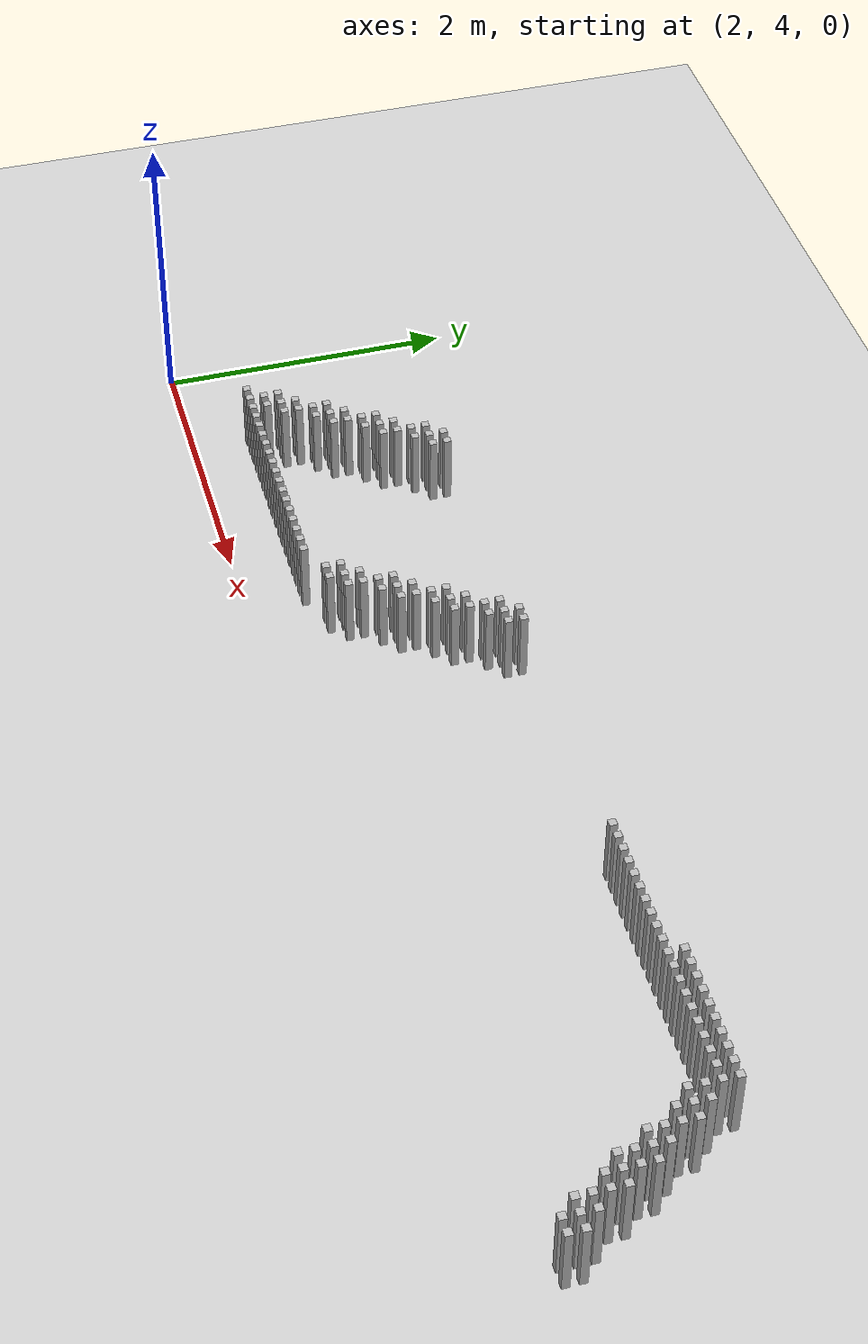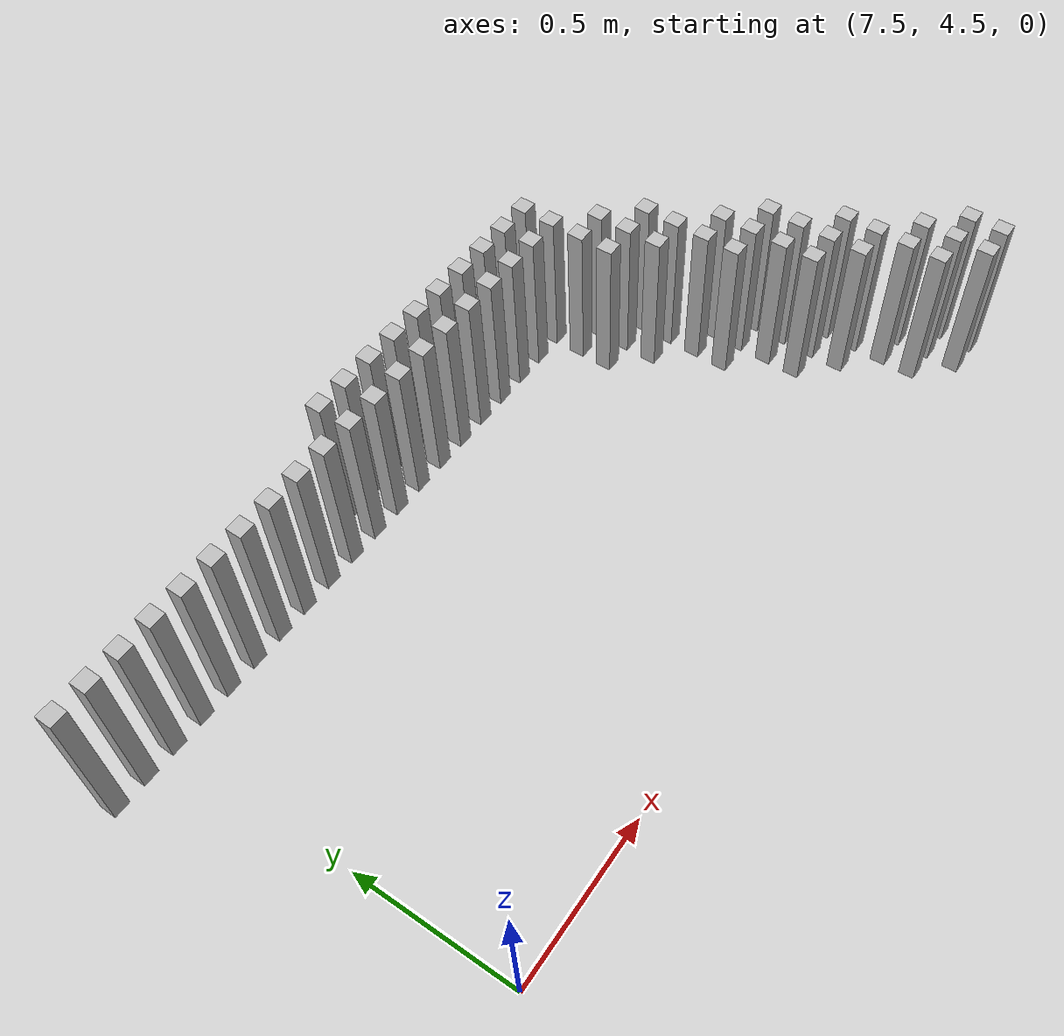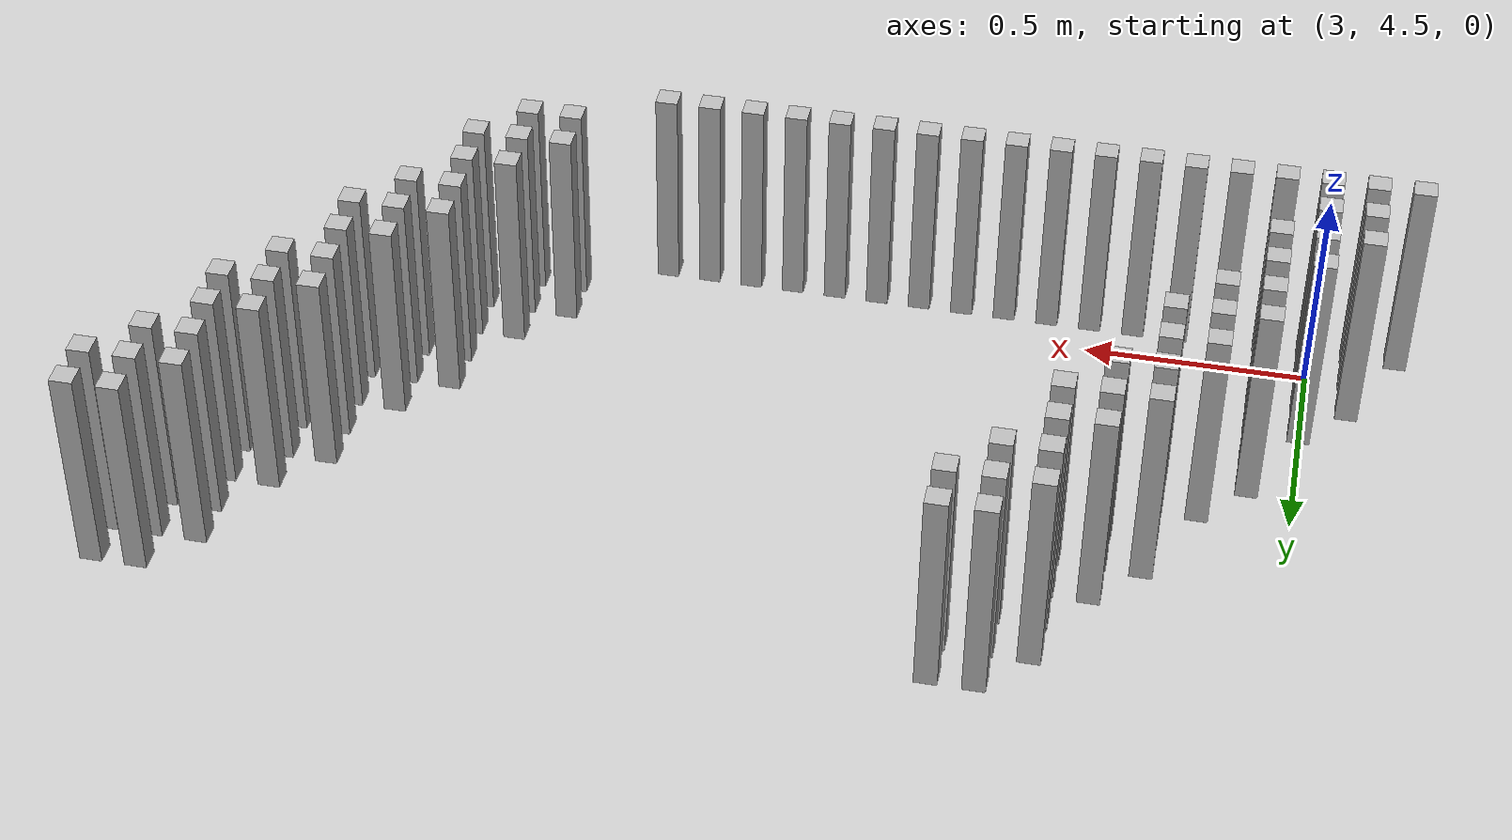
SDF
<sdf version="1.6">
 <world name="default_world">
  <include><uri>model://sun</uri></include>
  <include><uri>model://ground_plane</uri></include>
  <model name="wall_262">
   <static>true</static>
   <link name="link">
    <collision name="collision"><geometry><box><size>0.05 0.05 0.5</size></box></geometry></collision>
    <visual name="visual"><geometry><box><size>0.05 0.05 0.5</size></box></geometry></visual>
    <pose>8.3 5.7 0.25 0 0 0</pose>
   </link>
  </model>
  <model name="wall_263">
   <static>true</static>
   <link name="link">
    <collision name="collision"><geometry><box><size>0.05 0.05 0.5</size></box></geometry></collision>
    <visual name="visual"><geometry><box><size>0.05 0.05 0.5</size></box></geometry></visual>
    <pose>8.4 5.7 0.25 0 0 0</pose>
   </link>
  </model>
  <model name="wall_264">
   <static>true</static>
   <link name="link">
    <collision name="collision"><geometry><box><size>0.05 0.05 0.5</size></box></geometry></collision>
    <visual name="visual"><geometry><box><size>0.05 0.05 0.5</size></box></geometry></visual>
    <pose>8.5 5.7 0.25 0 0 0</pose>
   </link>
  </model>
  <model name="wall_265">
   <static>true</static>
   <link name="link">
    <collision name="collision"><geometry><box><size>0.05 0.05 0.5</size></box></geometry></collision>
    <visual name="visual"><geometry><box><size>0.05 0.05 0.5</size></box></geometry></visual>
    <pose>8.6 5.7 0.25 0 0 0</pose>
   </link>
  </model>
  <model name="wall_266">
   <static>true</static>
   <link name="link">
    <collision name="collision"><geometry><box><size>0.05 0.05 0.5</size></box></geometry></collision>
    <visual name="visual"><geometry><box><size>0.05 0.05 0.5</size></box></geometry></visual>
    <pose>8.700000000000001 5.7 0.25 0 0 0</pose>
   </link>
  </model>
  <model name="wall_267">
   <static>true</static>
   <link name="link">
    <collision name="collision"><geometry><box><size>0.05 0.05 0.5</size></box></geometry></collision>
    <visual name="visual"><geometry><box><size>0.05 0.05 0.5</size></box></geometry></visual>
    <pose>8.8 5.7 0.25 0 0 0</pose>
   </link>
  </model>
  <model name="wall_268">
   <static>true</static>
   <link name="link">
    <collision name="collision"><geometry><box><size>0.05 0.05 0.5</size></box></geometry></collision>
    <visual name="visual"><geometry><box><size>0.05 0.05 0.5</size></box></geometry></visual>
    <pose>8.9 5.7 0.25 0 0 0</pose>
   </link>
  </model>
  <model name="wall_269">
   <static>true</static>
   <link name="link">
    <collision name="collision"><geometry><box><size>0.05 0.05 0.5</size></box></geometry></collision>
    <visual name="visual"><geometry><box><size>0.05 0.05 0.5</size></box></geometry></visual>
    <pose>9.0 5.7 0.25 0 0 0</pose>
   </link>
  </model>
  <model name="wall_270">
   <static>true</static>
   <link name="link">
    <collision name="collision"><geometry><box><size>0.05 0.05 0.5</size></box></geometry></collision>
    <visual name="visual"><geometry><box><size>0.05 0.05 0.5</size></box></geometry></visual>
    <pose>9.1 5.7 0.25 0 0 0</pose>
   </link>
  </model>
  <model name="wall_271">
   <static>true</static>
   <link name="link">
    <collision name="collision"><geometry><box><size>0.05 0.05 0.5</size></box></geometry></collision>
    <visual name="visual"><geometry><box><size>0.05 0.05 0.5</size></box></geometry></visual>
    <pose>9.200000000000001 5.7 0.25 0 0 0</pose>
   </link>
  </model>
  <model name="wall_272">
   <static>true</static>
   <link name="link">
    <collision name="collision"><geometry><box><size>0.05 0.05 0.5</size></box></geometry></collision>
    <visual name="visual"><geometry><box><size>0.05 0.05 0.5</size></box></geometry></visual>
    <pose>3.6 5.6000000000000005 0.25 0 0 0</pose>
   </link>
  </model>
  <model name="wall_273">
   <static>true</static>
   <link name="link">
    <collision name="collision"><geometry><box><size>0.05 0.05 0.5</size></box></geometry></collision>
    <visual name="visual"><geometry><box><size>0.05 0.05 0.5</size></box></geometry></visual>
    <pose>3.7 5.6000000000000005 0.25 0 0 0</pose>
   </link>
  </model>
  <model name="wall_274">
   <static>true</static>
   <link name="link">
    <collision name="collision"><geometry><box><size>0.05 0.05 0.5</size></box></geometry></collision>
    <visual name="visual"><geometry><box><size>0.05 0.05 0.5</size></box></geometry></visual>
    <pose>5.4 5.6000000000000005 0.25 0 0 0</pose>
   </link>
  </model>
  <model name="wall_275">
   <static>true</static>
   <link name="link">
    <collision name="collision"><geometry><box><size>0.05 0.05 0.5</size></box></geometry></collision>
    <visual name="visual"><geometry><box><size>0.05 0.05 0.5</size></box></geometry></visual>
    <pose>5.5 5.6000000000000005 0.25 0 0 0</pose>
   </link>
  </model>
  <model name="wall_276">
   <static>true</static>
   <link name="link">
    <collision name="collision"><geometry><box><size>0.05 0.05 0.5</size></box></geometry></collision>
    <visual name="visual"><geometry><box><size>0.05 0.05 0.5</size></box></geometry></visual>
    <pose>7.300000000000001 5.6000000000000005 0.25 0 0 0</pose>
   </link>
  </model>
  <model name="wall_277">
   <static>true</static>
   <link name="link">
    <collision name="collision"><geometry><box><size>0.05 0.05 0.5</size></box></geometry></collision>
    <visual name="visual"><geometry><box><size>0.05 0.05 0.5</size></box></geometry></visual>
    <pose>7.4 5.6000000000000005 0.25 0 0 0</pose>
   </link>
  </model>
  <model name="wall_278">
   <static>true</static>
   <link name="link">
    <collision name="collision"><geometry><box><size>0.05 0.05 0.5</size></box></geometry></collision>
    <visual name="visual"><geometry><box><size>0.05 0.05 0.5</size></box></geometry></visual>
    <pose>7.5 5.6000000000000005 0.25 0 0 0</pose>
   </link>
  </model>
  <model name="wall_279">
   <static>true</static>
   <link name="link">
    <collision name="collision"><geometry><box><size>0.05 0.05 0.5</size></box></geometry></collision>
    <visual name="visual"><geometry><box><size>0.05 0.05 0.5</size></box></geometry></visual>
    <pose>7.6000000000000005 5.6000000000000005 0.25 0 0 0</pose>
   </link>
  </model>
  <model name="wall_280">
   <static>true</static>
   <link name="link">
    <collision name="collision"><geometry><box><size>0.05 0.05 0.5</size></box></geometry></collision>
    <visual name="visual"><geometry><box><size>0.05 0.05 0.5</size></box></geometry></visual>
    <pose>7.7 5.6000000000000005 0.25 0 0 0</pose>
   </link>
  </model>
  <model name="wall_281">
   <static>true</static>
   <link name="link">
    <collision name="collision"><geometry><box><size>0.05 0.05 0.5</size></box></geometry></collision>
    <visual name="visual"><geometry><box><size>0.05 0.05 0.5</size></box></geometry></visual>
    <pose>7.800000000000001 5.6000000000000005 0.25 0 0 0</pose>
   </link>
  </model>
  <model name="wall_282">
   <static>true</static>
   <link name="link">
    <collision name="collision"><geometry><box><size>0.05 0.05 0.5</size></box></geometry></collision>
    <visual name="visual"><geometry><box><size>0.05 0.05 0.5</size></box></geometry></visual>
    <pose>7.9 5.6000000000000005 0.25 0 0 0</pose>
   </link>
  </model>
  <model name="wall_283">
   <static>true</static>
   <link name="link">
    <collision name="collision"><geometry><box><size>0.05 0.05 0.5</size></box></geometry></collision>
    <visual name="visual"><geometry><box><size>0.05 0.05 0.5</size></box></geometry></visual>
    <pose>8.0 5.6000000000000005 0.25 0 0 0</pose>
   </link>
  </model>
  <model name="wall_284">
   <static>true</static>
   <link name="link">
    <collision name="collision"><geometry><box><size>0.05 0.05 0.5</size></box></geometry></collision>
    <visual name="visual"><geometry><box><size>0.05 0.05 0.5</size></box></geometry></visual>
    <pose>8.1 5.6000000000000005 0.25 0 0 0</pose>
   </link>
  </model>
  <model name="wall_285">
   <static>true</static>
   <link name="link">
    <collision name="collision"><geometry><box><size>0.05 0.05 0.5</size></box></geometry></collision>
    <visual name="visual"><geometry><box><size>0.05 0.05 0.5</size></box></geometry></visual>
    <pose>8.200000000000001 5.6000000000000005 0.25 0 0 0</pose>
   </link>
  </model>
  <model name="wall_286">
   <static>true</static>
   <link name="link">
    <collision name="collision"><geometry><box><size>0.05 0.05 0.5</size></box></geometry></collision>
    <visual name="visual"><geometry><box><size>0.05 0.05 0.5</size></box></geometry></visual>
    <pose>8.3 5.6000000000000005 0.25 0 0 0</pose>
   </link>
  </model>
  <model name="wall_287">
   <static>true</static>
   <link name="link">
    <collision name="collision"><geometry><box><size>0.05 0.05 0.5</size></box></geometry></collision>
    <visual name="visual"><geometry><box><size>0.05 0.05 0.5</size></box></geometry></visual>
    <pose>8.4 5.6000000000000005 0.25 0 0 0</pose>
   </link>
  </model>
  <model name="wall_288">
   <static>true</static>
   <link name="link">
    <collision name="collision"><geometry><box><size>0.05 0.05 0.5</size></box></geometry></collision>
    <visual name="visual"><geometry><box><size>0.05 0.05 0.5</size></box></geometry></visual>
    <pose>8.5 5.6000000000000005 0.25 0 0 0</pose>
   </link>
  </model>
  <model name="wall_289">
   <static>true</static>
   <link name="link">
    <collision name="collision"><geometry><box><size>0.05 0.05 0.5</size></box></geometry></collision>
    <visual name="visual"><geometry><box><size>0.05 0.05 0.5</size></box></geometry></visual>
    <pose>8.6 5.6000000000000005 0.25 0 0 0</pose>
   </link>
  </model>
  <model name="wall_290">
   <static>true</static>
   <link name="link">
    <collision name="collision"><geometry><box><size>0.05 0.05 0.5</size></box></geometry></collision>
    <visual name="visual"><geometry><box><size>0.05 0.05 0.5</size></box></geometry></visual>
    <pose>8.700000000000001 5.6000000000000005 0.25 0 0 0</pose>
   </link>
  </model>
  <model name="wall_291">
   <static>true</static>
   <link name="link">
    <collision name="collision"><geometry><box><size>0.05 0.05 0.5</size></box></geometry></collision>
    <visual name="visual"><geometry><box><size>0.05 0.05 0.5</size></box></geometry></visual>
    <pose>8.8 5.6000000000000005 0.25 0 0 0</pose>
   </link>
  </model>
  <model name="wall_292">
   <static>true</static>
   <link name="link">
    <collision name="collision"><geometry><box><size>0.05 0.05 0.5</size></box></geometry></collision>
    <visual name="visual"><geometry><box><size>0.05 0.05 0.5</size></box></geometry></visual>
    <pose>8.9 5.6000000000000005 0.25 0 0 0</pose>
   </link>
  </model>
  <model name="wall_293">
   <static>true</static>
   <link name="link">
    <collision name="collision"><geometry><box><size>0.05 0.05 0.5</size></box></geometry></collision>
    <visual name="visual"><geometry><box><size>0.05 0.05 0.5</size></box></geometry></visual>
    <pose>9.0 5.6000000000000005 0.25 0 0 0</pose>
   </link>
  </model>
  <model name="wall_294">
   <static>true</static>
   <link name="link">
    <collision name="collision"><geometry><box><size>0.05 0.05 0.5</size></box></geometry></collision>
    <visual name="visual"><geometry><box><size>0.05 0.05 0.5</size></box></geometry></visual>
    <pose>9.1 5.6000000000000005 0.25 0 0 0</pose>
   </link>
  </model>
  <model name="wall_295">
   <static>true</static>
   <link name="link">
    <collision name="collision"><geometry><box><size>0.05 0.05 0.5</size></box></geometry></collision>
    <visual name="visual"><geometry><box><size>0.05 0.05 0.5</size></box></geometry></visual>
    <pose>9.200000000000001 5.6000000000000005 0.25 0 0 0</pose>
   </link>
  </model>
  <model name="wall_296">
   <static>true</static>
   <link name="link">
    <collision name="collision"><geometry><box><size>0.05 0.05 0.5</size></box></geometry></collision>
    <visual name="visual"><geometry><box><size>0.05 0.05 0.5</size></box></geometry></visual>
    <pose>3.5 5.5 0.25 0 0 0</pose>
   </link>
  </model>
  <model name="wall_297">
   <static>true</static>
   <link name="link">
    <collision name="collision"><geometry><box><size>0.05 0.05 0.5</size></box></geometry></collision>
    <visual name="visual"><geometry><box><size>0.05 0.05 0.5</size></box></geometry></visual>
    <pose>3.6 5.5 0.25 0 0 0</pose>
   </link>
  </model>
  <model name="wall_298">
   <static>true</static>
   <link name="link">
    <collision name="collision"><geometry><box><size>0.05 0.05 0.5</size></box></geometry></collision>
    <visual name="visual"><geometry><box><size>0.05 0.05 0.5</size></box></geometry></visual>
    <pose>3.7 5.5 0.25 0 0 0</pose>
   </link>
  </model>
  <model name="wall_299">
   <static>true</static>
   <link name="link">
    <collision name="collision"><geometry><box><size>0.05 0.05 0.5</size></box></geometry></collision>
    <visual name="visual"><geometry><box><size>0.05 0.05 0.5</size></box></geometry></visual>
    <pose>5.300000000000001 5.5 0.25 0 0 0</pose>
   </link>
  </model>
  <model name="wall_300">
   <static>true</static>
   <link name="link">
    <collision name="collision"><geometry><box><size>0.05 0.05 0.5</size></box></geometry></collision>
    <visual name="visual"><geometry><box><size>0.05 0.05 0.5</size></box></geometry></visual>
    <pose>5.4 5.5 0.25 0 0 0</pose>
   </link>
  </model>
  <model name="wall_301">
   <static>true</static>
   <link name="link">
    <collision name="collision"><geometry><box><size>0.05 0.05 0.5</size></box></geometry></collision>
    <visual name="visual"><geometry><box><size>0.05 0.05 0.5</size></box></geometry></visual>
    <pose>5.5 5.5 0.25 0 0 0</pose>
   </link>
  </model>
  <model name="wall_302">
   <static>true</static>
   <link name="link">
    <collision name="collision"><geometry><box><size>0.05 0.05 0.5</size></box></geometry></collision>
    <visual name="visual"><geometry><box><size>0.05 0.05 0.5</size></box></geometry></visual>
    <pose>9.200000000000001 5.5 0.25 0 0 0</pose>
   </link>
  </model>
  <model name="wall_303">
   <static>true</static>
   <link name="link">
    <collision name="collision"><geometry><box><size>0.05 0.05 0.5</size></box></geometry></collision>
    <visual name="visual"><geometry><box><size>0.05 0.05 0.5</size></box></geometry></visual>
    <pose>9.3 5.5 0.25 0 0 0</pose>
   </link>
  </model>
  <model name="wall_304">
   <static>true</static>
   <link name="link">
    <collision name="collision"><geometry><box><size>0.05 0.05 0.5</size></box></geometry></collision>
    <visual name="visual"><geometry><box><size>0.05 0.05 0.5</size></box></geometry></visual>
    <pose>3.5 5.4 0.25 0 0 0</pose>
   </link>
  </model>
  <model name="wall_305">
   <static>true</static>
   <link name="link">
    <collision name="collision"><geometry><box><size>0.05 0.05 0.5</size></box></geometry></collision>
    <visual name="visual"><geometry><box><size>0.05 0.05 0.5</size></box></geometry></visual>
    <pose>3.6 5.4 0.25 0 0 0</pose>
   </link>
  </model>
  <model name="wall_306">
   <static>true</static>
   <link name="link">
    <collision name="collision"><geometry><box><size>0.05 0.05 0.5</size></box></geometry></collision>
    <visual name="visual"><geometry><box><size>0.05 0.05 0.5</size></box></geometry></visual>
    <pose>5.300000000000001 5.4 0.25 0 0 0</pose>
   </link>
  </model>
  <model name="wall_307">
   <static>true</static>
   <link name="link">
    <collision name="collision"><geometry><box><size>0.05 0.05 0.5</size></box></geometry></collision>
    <visual name="visual"><geometry><box><size>0.05 0.05 0.5</size></box></geometry></visual>
    <pose>5.4 5.4 0.25 0 0 0</pose>
   </link>
  </model>
  <model name="wall_308">
   <static>true</static>
   <link name="link">
    <collision name="collision"><geometry><box><size>0.05 0.05 0.5</size></box></geometry></collision>
    <visual name="visual"><geometry><box><size>0.05 0.05 0.5</size></box></geometry></visual>
    <pose>9.200000000000001 5.4 0.25 0 0 0</pose>
   </link>
  </model>
  <model name="wall_309">
   <static>true</static>
   <link name="link">
    <collision name="collision"><geometry><box><size>0.05 0.05 0.5</size></box></geometry></collision>
    <visual name="visual"><geometry><box><size>0.05 0.05 0.5</size></box></geometry></visual>
    <pose>9.3 5.4 0.25 0 0 0</pose>
   </link>
  </model>
  <model name="wall_310">
   <static>true</static>
   <link name="link">
    <collision name="collision"><geometry><box><size>0.05 0.05 0.5</size></box></geometry></collision>
    <visual name="visual"><geometry><box><size>0.05 0.05 0.5</size></box></geometry></visual>
    <pose>9.4 5.4 0.25 0 0 0</pose>
   </link>
  </model>
  <model name="wall_311">
   <static>true</static>
   <link name="link">
    <collision name="collision"><geometry><box><size>0.05 0.05 0.5</size></box></geometry></collision>
    <visual name="visual"><geometry><box><size>0.05 0.05 0.5</size></box></geometry></visual>
    <pose>3.4000000000000004 5.300000000000001 0.25 0 0 0</pose>
   </link>
  </model>
  <model name="wall_312">
   <static>true</static>
   <link name="link">
    <collision name="collision"><geometry><box><size>0.05 0.05 0.5</size></box></geometry></collision>
    <visual name="visual"><geometry><box><size>0.05 0.05 0.5</size></box></geometry></visual>
    <pose>3.5 5.300000000000001 0.25 0 0 0</pose>
   </link>
  </model>
  <model name="wall_313">
   <static>true</static>
   <link name="link">
    <collision name="collision"><geometry><box><size>0.05 0.05 0.5</size></box></geometry></collision>
    <visual name="visual"><geometry><box><size>0.05 0.05 0.5</size></box></geometry></visual>
    <pose>5.2 5.300000000000001 0.25 0 0 0</pose>
   </link>
  </model>
  <model name="wall_314">
   <static>true</static>
   <link name="link">
    <collision name="collision"><geometry><box><size>0.05 0.05 0.5</size></box></geometry></collision>
    <visual name="visual"><geometry><box><size>0.05 0.05 0.5</size></box></geometry></visual>
    <pose>5.300000000000001 5.300000000000001 0.25 0 0 0</pose>
   </link>
  </model>
  <model name="wall_315">
   <static>true</static>
   <link name="link">
    <collision name="collision"><geometry><box><size>0.05 0.05 0.5</size></box></geometry></collision>
    <visual name="visual"><geometry><box><size>0.05 0.05 0.5</size></box></geometry></visual>
    <pose>9.3 5.300000000000001 0.25 0 0 0</pose>
   </link>
  </model>
  <model name="wall_316">
   <static>true</static>
   <link name="link">
    <collision name="collision"><geometry><box><size>0.05 0.05 0.5</size></box></geometry></collision>
    <visual name="visual"><geometry><box><size>0.05 0.05 0.5</size></box></geometry></visual>
    <pose>9.4 5.300000000000001 0.25 0 0 0</pose>
   </link>
  </model>
  <model name="wall_317">
   <static>true</static>
   <link name="link">
    <collision name="collision"><geometry><box><size>0.05 0.05 0.5</size></box></geometry></collision>
    <visual name="visual"><geometry><box><size>0.05 0.05 0.5</size></box></geometry></visual>
    <pose>3.3000000000000003 5.2 0.25 0 0 0</pose>
   </link>
  </model>
  <model name="wall_318">
   <static>true</static>
   <link name="link">
    <collision name="collision"><geometry><box><size>0.05 0.05 0.5</size></box></geometry></collision>
    <visual name="visual"><geometry><box><size>0.05 0.05 0.5</size></box></geometry></visual>
    <pose>3.4000000000000004 5.2 0.25 0 0 0</pose>
   </link>
  </model>
  <model name="wall_319">
   <static>true</static>
   <link name="link">
    <collision name="collision"><geometry><box><size>0.05 0.05 0.5</size></box></geometry></collision>
    <visual name="visual"><geometry><box><size>0.05 0.05 0.5</size></box></geometry></visual>
    <pose>3.5 5.2 0.25 0 0 0</pose>
   </link>
  </model>
  <model name="wall_320">
   <static>true</static>
   <link name="link">
    <collision name="collision"><geometry><box><size>0.05 0.05 0.5</size></box></geometry></collision>
    <visual name="visual"><geometry><box><size>0.05 0.05 0.5</size></box></geometry></visual>
    <pose>5.1000000000000005 5.2 0.25 0 0 0</pose>
   </link>
  </model>
  <model name="wall_321">
   <static>true</static>
   <link name="link">
    <collision name="collision"><geometry><box><size>0.05 0.05 0.5</size></box></geometry></collision>
    <visual name="visual"><geometry><box><size>0.05 0.05 0.5</size></box></geometry></visual>
    <pose>5.2 5.2 0.25 0 0 0</pose>
   </link>
  </model>
  <model name="wall_322">
   <static>true</static>
   <link name="link">
    <collision name="collision"><geometry><box><size>0.05 0.05 0.5</size></box></geometry></collision>
    <visual name="visual"><geometry><box><size>0.05 0.05 0.5</size></box></geometry></visual>
    <pose>5.300000000000001 5.2 0.25 0 0 0</pose>
   </link>
  </model>
  <model name="wall_323">
   <static>true</static>
   <link name="link">
    <collision name="collision"><geometry><box><size>0.05 0.05 0.5</size></box></geometry></collision>
    <visual name="visual"><geometry><box><size>0.05 0.05 0.5</size></box></geometry></visual>
    <pose>9.4 5.2 0.25 0 0 0</pose>
   </link>
  </model>
  <model name="wall_324">
   <static>true</static>
   <link name="link">
    <collision name="collision"><geometry><box><size>0.05 0.05 0.5</size></box></geometry></collision>
    <visual name="visual"><geometry><box><size>0.05 0.05 0.5</size></box></geometry></visual>
    <pose>9.5 5.2 0.25 0 0 0</pose>
   </link>
  </model>
  <model name="wall_325">
   <static>true</static>
   <link name="link">
    <collision name="collision"><geometry><box><size>0.05 0.05 0.5</size></box></geometry></collision>
    <visual name="visual"><geometry><box><size>0.05 0.05 0.5</size></box></geometry></visual>
    <pose>3.3000000000000003 5.1000000000000005 0.25 0 0 0</pose>
   </link>
  </model>
  <model name="wall_326">
   <static>true</static>
   <link name="link">
    <collision name="collision"><geometry><box><size>0.05 0.05 0.5</size></box></geometry></collision>
    <visual name="visual"><geometry><box><size>0.05 0.05 0.5</size></box></geometry></visual>
    <pose>3.4000000000000004 5.1000000000000005 0.25 0 0 0</pose>
   </link>
  </model>
  <model name="wall_327">
   <static>true</static>
   <link name="link">
    <collision name="collision"><geometry><box><size>0.05 0.05 0.5</size></box></geometry></collision>
    <visual name="visual"><geometry><box><size>0.05 0.05 0.5</size></box></geometry></visual>
    <pose>5.1000000000000005 5.1000000000000005 0.25 0 0 0</pose>
   </link>
  </model>
  <model name="wall_328">
   <static>true</static>
   <link name="link">
    <collision name="collision"><geometry><box><size>0.05 0.05 0.5</size></box></geometry></collision>
    <visual name="visual"><geometry><box><size>0.05 0.05 0.5</size></box></geometry></visual>
    <pose>5.2 5.1000000000000005 0.25 0 0 0</pose>
   </link>
  </model>
  <model name="wall_329">
   <static>true</static>
   <link name="link">
    <collision name="collision"><geometry><box><size>0.05 0.05 0.5</size></box></geometry></collision>
    <visual name="visual"><geometry><box><size>0.05 0.05 0.5</size></box></geometry></visual>
    <pose>9.4 5.1000000000000005 0.25 0 0 0</pose>
   </link>
  </model>
  <model name="wall_330">
   <static>true</static>
   <link name="link">
    <collision name="collision"><geometry><box><size>0.05 0.05 0.5</size></box></geometry></collision>
    <visual name="visual"><geometry><box><size>0.05 0.05 0.5</size></box></geometry></visual>
    <pose>9.5 5.1000000000000005 0.25 0 0 0</pose>
   </link>
  </model>
  <model name="wall_331">
   <static>true</static>
   <link name="link">
    <collision name="collision"><geometry><box><size>0.05 0.05 0.5</size></box></geometry></collision>
    <visual name="visual"><geometry><box><size>0.05 0.05 0.5</size></box></geometry></visual>
    <pose>9.600000000000001 5.1000000000000005 0.25 0 0 0</pose>
   </link>
  </model>
  <model name="wall_332">
   <static>true</static>
   <link name="link">
    <collision name="collision"><geometry><box><size>0.05 0.05 0.5</size></box></geometry></collision>
    <visual name="visual"><geometry><box><size>0.05 0.05 0.5</size></box></geometry></visual>
    <pose>3.2 5.0 0.25 0 0 0</pose>
   </link>
  </model>
  <model name="wall_333">
   <static>true</static>
   <link name="link">
    <collision name="collision"><geometry><box><size>0.05 0.05 0.5</size></box></geometry></collision>
    <visual name="visual"><geometry><box><size>0.05 0.05 0.5</size></box></geometry></visual>
    <pose>3.3000000000000003 5.0 0.25 0 0 0</pose>
   </link>
  </model>
  <model name="wall_334">
   <static>true</static>
   <link name="link">
    <collision name="collision"><geometry><box><size>0.05 0.05 0.5</size></box></geometry></collision>
    <visual name="visual"><geometry><box><size>0.05 0.05 0.5</size></box></geometry></visual>
    <pose>5.0 5.0 0.25 0 0 0</pose>
   </link>
  </model>
  <model name="wall_335">
   <static>true</static>
   <link name="link">
    <collision name="collision"><geometry><box><size>0.05 0.05 0.5</size></box></geometry></collision>
    <visual name="visual"><geometry><box><size>0.05 0.05 0.5</size></box></geometry></visual>
    <pose>5.1000000000000005 5.0 0.25 0 0 0</pose>
   </link>
  </model>
  <model name="wall_336">
   <static>true</static>
   <link name="link">
    <collision name="collision"><geometry><box><size>0.05 0.05 0.5</size></box></geometry></collision>
    <visual name="visual"><geometry><box><size>0.05 0.05 0.5</size></box></geometry></visual>
    <pose>9.5 5.0 0.25 0 0 0</pose>
   </link>
  </model>
  <model name="wall_337">
   <static>true</static>
   <link name="link">
    <collision name="collision"><geometry><box><size>0.05 0.05 0.5</size></box></geometry></collision>
    <visual name="visual"><geometry><box><size>0.05 0.05 0.5</size></box></geometry></visual>
    <pose>9.600000000000001 5.0 0.25 0 0 0</pose>
   </link>
  </model>
  <model name="wall_338">
   <static>true</static>
   <link name="link">
    <collision name="collision"><geometry><box><size>0.05 0.05 0.5</size></box></geometry></collision>
    <visual name="visual"><geometry><box><size>0.05 0.05 0.5</size></box></geometry></visual>
    <pose>3.1 4.9 0.25 0 0 0</pose>
   </link>
  </model>
  <model name="wall_339">
   <static>true</static>
   <link name="link">
    <collision name="collision"><geometry><box><size>0.05 0.05 0.5</size></box></geometry></collision>
    <visual name="visual"><geometry><box><size>0.05 0.05 0.5</size></box></geometry></visual>
    <pose>3.2 4.9 0.25 0 0 0</pose>
   </link>
  </model>
  <model name="wall_340">
   <static>true</static>
   <link name="link">
    <collision name="collision"><geometry><box><size>0.05 0.05 0.5</size></box></geometry></collision>
    <visual name="visual"><geometry><box><size>0.05 0.05 0.5</size></box></geometry></visual>
    <pose>3.3000000000000003 4.9 0.25 0 0 0</pose>
   </link>
  </model>
  <model name="wall_341">
   <static>true</static>
   <link name="link">
    <collision name="collision"><geometry><box><size>0.05 0.05 0.5</size></box></geometry></collision>
    <visual name="visual"><geometry><box><size>0.05 0.05 0.5</size></box></geometry></visual>
    <pose>4.9 4.9 0.25 0 0 0</pose>
   </link>
  </model>
  <model name="wall_342">
   <static>true</static>
   <link name="link">
    <collision name="collision"><geometry><box><size>0.05 0.05 0.5</size></box></geometry></collision>
    <visual name="visual"><geometry><box><size>0.05 0.05 0.5</size></box></geometry></visual>
    <pose>5.0 4.9 0.25 0 0 0</pose>
   </link>
  </model>
  <model name="wall_343">
   <static>true</static>
   <link name="link">
    <collision name="collision"><geometry><box><size>0.05 0.05 0.5</size></box></geometry></collision>
    <visual name="visual"><geometry><box><size>0.05 0.05 0.5</size></box></geometry></visual>
    <pose>5.1000000000000005 4.9 0.25 0 0 0</pose>
   </link>
  </model>
  <model name="wall_344">
   <static>true</static>
   <link name="link">
    <collision name="collision"><geometry><box><size>0.05 0.05 0.5</size></box></geometry></collision>
    <visual name="visual"><geometry><box><size>0.05 0.05 0.5</size></box></geometry></visual>
    <pose>9.5 4.9 0.25 0 0 0</pose>
   </link>
  </model>
  <model name="wall_345">
   <static>true</static>
   <link name="link">
    <collision name="collision"><geometry><box><size>0.05 0.05 0.5</size></box></geometry></collision>
    <visual name="visual"><geometry><box><size>0.05 0.05 0.5</size></box></geometry></visual>
    <pose>9.600000000000001 4.9 0.25 0 0 0</pose>
   </link>
  </model>
  <model name="wall_346">
   <static>true</static>
   <link name="link">
    <collision name="collision"><geometry><box><size>0.05 0.05 0.5</size></box></geometry></collision>
    <visual name="visual"><geometry><box><size>0.05 0.05 0.5</size></box></geometry></visual>
    <pose>9.700000000000001 4.9 0.25 0 0 0</pose>
   </link>
  </model>
  <model name="wall_347">
   <static>true</static>
   <link name="link">
    <collision name="collision"><geometry><box><size>0.05 0.05 0.5</size></box></geometry></collision>
    <visual name="visual"><geometry><box><size>0.05 0.05 0.5</size></box></geometry></visual>
    <pose>3.1 4.800000000000001 0.25 0 0 0</pose>
   </link>
  </model>
  <model name="wall_348">
   <static>true</static>
   <link name="link">
    <collision name="collision"><geometry><box><size>0.05 0.05 0.5</size></box></geometry></collision>
    <visual name="visual"><geometry><box><size>0.05 0.05 0.5</size></box></geometry></visual>
    <pose>3.2 4.800000000000001 0.25 0 0 0</pose>
   </link>
  </model>
  <model name="wall_349">
   <static>true</static>
   <link name="link">
    <collision name="collision"><geometry><box><size>0.05 0.05 0.5</size></box></geometry></collision>
    <visual name="visual"><geometry><box><size>0.05 0.05 0.5</size></box></geometry></visual>
    <pose>4.9 4.800000000000001 0.25 0 0 0</pose>
   </link>
  </model>
  <model name="wall_350">
   <static>true</static>
   <link name="link">
    <collision name="collision"><geometry><box><size>0.05 0.05 0.5</size></box></geometry></collision>
    <visual name="visual"><geometry><box><size>0.05 0.05 0.5</size></box></geometry></visual>
    <pose>5.0 4.800000000000001 0.25 0 0 0</pose>
   </link>
  </model>
  <model name="wall_351">
   <static>true</static>
   <link name="link">
    <collision name="collision"><geometry><box><size>0.05 0.05 0.5</size></box></geometry></collision>
    <visual name="visual"><geometry><box><size>0.05 0.05 0.5</size></box></geometry></visual>
    <pose>9.600000000000001 4.800000000000001 0.25 0 0 0</pose>
   </link>
  </model>
  <model name="wall_352">
   <static>true</static>
   <link name="link">
    <collision name="collision"><geometry><box><size>0.05 0.05 0.5</size></box></geometry></collision>
    <visual name="visual"><geometry><box><size>0.05 0.05 0.5</size></box></geometry></visual>
    <pose>9.700000000000001 4.800000000000001 0.25 0 0 0</pose>
   </link>
  </model>
  <model name="wall_353">
   <static>true</static>
   <link name="link">
    <collision name="collision"><geometry><box><size>0.05 0.05 0.5</size></box></geometry></collision>
    <visual name="visual"><geometry><box><size>0.05 0.05 0.5</size></box></geometry></visual>
    <pose>3.0 4.7 0.25 0 0 0</pose>
   </link>
  </model>
  <model name="wall_354">
   <static>true</static>
   <link name="link">
    <collision name="collision"><geometry><box><size>0.05 0.05 0.5</size></box></geometry></collision>
    <visual name="visual"><geometry><box><size>0.05 0.05 0.5</size></box></geometry></visual>
    <pose>3.1 4.7 0.25 0 0 0</pose>
   </link>
  </model>
  <model name="wall_355">
   <static>true</static>
   <link name="link">
    <collision name="collision"><geometry><box><size>0.05 0.05 0.5</size></box></geometry></collision>
    <visual name="visual"><geometry><box><size>0.05 0.05 0.5</size></box></geometry></visual>
    <pose>4.800000000000001 4.7 0.25 0 0 0</pose>
   </link>
  </model>
  <model name="wall_356">
   <static>true</static>
   <link name="link">
    <collision name="collision"><geometry><box><size>0.05 0.05 0.5</size></box></geometry></collision>
    <visual name="visual"><geometry><box><size>0.05 0.05 0.5</size></box></geometry></visual>
    <pose>4.9 4.7 0.25 0 0 0</pose>
   </link>
  </model>
  <model name="wall_357">
   <static>true</static>
   <link name="link">
    <collision name="collision"><geometry><box><size>0.05 0.05 0.5</size></box></geometry></collision>
    <visual name="visual"><geometry><box><size>0.05 0.05 0.5</size></box></geometry></visual>
    <pose>9.700000000000001 4.7 0.25 0 0 0</pose>
   </link>
  </model>
  <model name="wall_358">
   <static>true</static>
   <link name="link">
    <collision name="collision"><geometry><box><size>0.05 0.05 0.5</size></box></geometry></collision>
    <visual name="visual"><geometry><box><size>0.05 0.05 0.5</size></box></geometry></visual>
    <pose>9.8 4.7 0.25 0 0 0</pose>
   </link>
  </model>
  <model name="wall_359">
   <static>true</static>
   <link name="link">
    <collision name="collision"><geometry><box><size>0.05 0.05 0.5</size></box></geometry></collision>
    <visual name="visual"><geometry><box><size>0.05 0.05 0.5</size></box></geometry></visual>
    <pose>2.9000000000000004 4.6000000000000005 0.25 0 0 0</pose>
   </link>
  </model>
  <model name="wall_360">
   <static>true</static>
   <link name="link">
    <collision name="collision"><geometry><box><size>0.05 0.05 0.5</size></box></geometry></collision>
    <visual name="visual"><geometry><box><size>0.05 0.05 0.5</size></box></geometry></visual>
    <pose>3.0 4.6000000000000005 0.25 0 0 0</pose>
   </link>
  </model>
  <model name="wall_361">
   <static>true</static>
   <link name="link">
    <collision name="collision"><geometry><box><size>0.05 0.05 0.5</size></box></geometry></collision>
    <visual name="visual"><geometry><box><size>0.05 0.05 0.5</size></box></geometry></visual>
    <pose>3.1 4.6000000000000005 0.25 0 0 0</pose>
   </link>
  </model>
  <model name="wall_362">
   <static>true</static>
   <link name="link">
    <collision name="collision"><geometry><box><size>0.05 0.05 0.5</size></box></geometry></collision>
    <visual name="visual"><geometry><box><size>0.05 0.05 0.5</size></box></geometry></visual>
    <pose>4.7 4.6000000000000005 0.25 0 0 0</pose>
   </link>
  </model>
  <model name="wall_363">
   <static>true</static>
   <link name="link">
    <collision name="collision"><geometry><box><size>0.05 0.05 0.5</size></box></geometry></collision>
    <visual name="visual"><geometry><box><size>0.05 0.05 0.5</size></box></geometry></visual>
    <pose>4.800000000000001 4.6000000000000005 0.25 0 0 0</pose>
   </link>
  </model>
  <model name="wall_364">
   <static>true</static>
   <link name="link">
    <collision name="collision"><geometry><box><size>0.05 0.05 0.5</size></box></geometry></collision>
    <visual name="visual"><geometry><box><size>0.05 0.05 0.5</size></box></geometry></visual>
    <pose>4.9 4.6000000000000005 0.25 0 0 0</pose>
   </link>
  </model>
  <model name="wall_365">
   <static>true</static>
   <link name="link">
    <collision name="collision"><geometry><box><size>0.05 0.05 0.5</size></box></geometry></collision>
    <visual name="visual"><geometry><box><size>0.05 0.05 0.5</size></box></geometry></visual>
    <pose>9.700000000000001 4.6000000000000005 0.25 0 0 0</pose>
   </link>
  </model>
  <model name="wall_366">
   <static>true</static>
   <link name="link">
    <collision name="collision"><geometry><box><size>0.05 0.05 0.5</size></box></geometry></collision>
    <visual name="visual"><geometry><box><size>0.05 0.05 0.5</size></box></geometry></visual>
    <pose>9.8 4.6000000000000005 0.25 0 0 0</pose>
   </link>
  </model>
  <model name="wall_367">
   <static>true</static>
   <link name="link">
    <collision name="collision"><geometry><box><size>0.05 0.05 0.5</size></box></geometry></collision>
    <visual name="visual"><geometry><box><size>0.05 0.05 0.5</size></box></geometry></visual>
    <pose>9.9 4.6000000000000005 0.25 0 0 0</pose>
   </link>
  </model>
  <model name="wall_368">
   <static>true</static>
   <link name="link">
    <collision name="collision"><geometry><box><size>0.05 0.05 0.5</size></box></geometry></collision>
    <visual name="visual"><geometry><box><size>0.05 0.05 0.5</size></box></geometry></visual>
    <pose>2.9000000000000004 4.5 0.25 0 0 0</pose>
   </link>
  </model>
  <model name="wall_369">
   <static>true</static>
   <link name="link">
    <collision name="collision"><geometry><box><size>0.05 0.05 0.5</size></box></geometry></collision>
    <visual name="visual"><geometry><box><size>0.05 0.05 0.5</size></box></geometry></visual>
    <pose>3.0 4.5 0.25 0 0 0</pose>
   </link>
  </model>
  <model name="wall_370">
   <static>true</static>
   <link name="link">
    <collision name="collision"><geometry><box><size>0.05 0.05 0.5</size></box></geometry></collision>
    <visual name="visual"><geometry><box><size>0.05 0.05 0.5</size></box></geometry></visual>
    <pose>4.7 4.5 0.25 0 0 0</pose>
   </link>
  </model>
  <model name="wall_371">
   <static>true</static>
   <link name="link">
    <collision name="collision"><geometry><box><size>0.05 0.05 0.5</size></box></geometry></collision>
    <visual name="visual"><geometry><box><size>0.05 0.05 0.5</size></box></geometry></visual>
    <pose>4.800000000000001 4.5 0.25 0 0 0</pose>
   </link>
  </model>
  <model name="wall_372">
   <static>true</static>
   <link name="link">
    <collision name="collision"><geometry><box><size>0.05 0.05 0.5</size></box></geometry></collision>
    <visual name="visual"><geometry><box><size>0.05 0.05 0.5</size></box></geometry></visual>
    <pose>9.8 4.5 0.25 0 0 0</pose>
   </link>
  </model>
  <model name="wall_373">
   <static>true</static>
   <link name="link">
    <collision name="collision"><geometry><box><size>0.05 0.05 0.5</size></box></geometry></collision>
    <visual name="visual"><geometry><box><size>0.05 0.05 0.5</size></box></geometry></visual>
    <pose>9.9 4.5 0.25 0 0 0</pose>
   </link>
  </model>
  <model name="wall_374">
   <static>true</static>
   <link name="link">
    <collision name="collision"><geometry><box><size>0.05 0.05 0.5</size></box></geometry></collision>
    <visual name="visual"><geometry><box><size>0.05 0.05 0.5</size></box></geometry></visual>
    <pose>2.8000000000000003 4.4 0.25 0 0 0</pose>
   </link>
  </model>
  <model name="wall_375">
   <static>true</static>
   <link name="link">
    <collision name="collision"><geometry><box><size>0.05 0.05 0.5</size></box></geometry></collision>
    <visual name="visual"><geometry><box><size>0.05 0.05 0.5</size></box></geometry></visual>
    <pose>2.9000000000000004 4.4 0.25 0 0 0</pose>
   </link>
  </model>
  <model name="wall_376">
   <static>true</static>
   <link name="link">
    <collision name="collision"><geometry><box><size>0.05 0.05 0.5</size></box></geometry></collision>
    <visual name="visual"><geometry><box><size>0.05 0.05 0.5</size></box></geometry></visual>
    <pose>3.0 4.4 0.25 0 0 0</pose>
   </link>
  </model>
  <model name="wall_377">
   <static>true</static>
   <link name="link">
    <collision name="collision"><geometry><box><size>0.05 0.05 0.5</size></box></geometry></collision>
    <visual name="visual"><geometry><box><size>0.05 0.05 0.5</size></box></geometry></visual>
    <pose>3.1 4.4 0.25 0 0 0</pose>
   </link>
  </model>
  <model name="wall_378">
   <static>true</static>
   <link name="link">
    <collision name="collision"><geometry><box><size>0.05 0.05 0.5</size></box></geometry></collision>
    <visual name="visual"><geometry><box><size>0.05 0.05 0.5</size></box></geometry></visual>
    <pose>3.2 4.4 0.25 0 0 0</pose>
   </link>
  </model>
  <model name="wall_379">
   <static>true</static>
   <link name="link">
    <collision name="collision"><geometry><box><size>0.05 0.05 0.5</size></box></geometry></collision>
    <visual name="visual"><geometry><box><size>0.05 0.05 0.5</size></box></geometry></visual>
    <pose>3.3000000000000003 4.4 0.25 0 0 0</pose>
   </link>
  </model>
  <model name="wall_380">
   <static>true</static>
   <link name="link">
    <collision name="collision"><geometry><box><size>0.05 0.05 0.5</size></box></geometry></collision>
    <visual name="visual"><geometry><box><size>0.05 0.05 0.5</size></box></geometry></visual>
    <pose>3.4000000000000004 4.4 0.25 0 0 0</pose>
   </link>
  </model>
  <model name="wall_381">
   <static>true</static>
   <link name="link">
    <collision name="collision"><geometry><box><size>0.05 0.05 0.5</size></box></geometry></collision>
    <visual name="visual"><geometry><box><size>0.05 0.05 0.5</size></box></geometry></visual>
    <pose>3.5 4.4 0.25 0 0 0</pose>
   </link>
  </model>
  <model name="wall_382">
   <static>true</static>
   <link name="link">
    <collision name="collision"><geometry><box><size>0.05 0.05 0.5</size></box></geometry></collision>
    <visual name="visual"><geometry><box><size>0.05 0.05 0.5</size></box></geometry></visual>
    <pose>3.6 4.4 0.25 0 0 0</pose>
   </link>
  </model>
  <model name="wall_383">
   <static>true</static>
   <link name="link">
    <collision name="collision"><geometry><box><size>0.05 0.05 0.5</size></box></geometry></collision>
    <visual name="visual"><geometry><box><size>0.05 0.05 0.5</size></box></geometry></visual>
    <pose>3.7 4.4 0.25 0 0 0</pose>
   </link>
  </model>
  <model name="wall_384">
   <static>true</static>
   <link name="link">
    <collision name="collision"><geometry><box><size>0.05 0.05 0.5</size></box></geometry></collision>
    <visual name="visual"><geometry><box><size>0.05 0.05 0.5</size></box></geometry></visual>
    <pose>3.8000000000000003 4.4 0.25 0 0 0</pose>
   </link>
  </model>
  <model name="wall_385">
   <static>true</static>
   <link name="link">
    <collision name="collision"><geometry><box><size>0.05 0.05 0.5</size></box></geometry></collision>
    <visual name="visual"><geometry><box><size>0.05 0.05 0.5</size></box></geometry></visual>
    <pose>3.9000000000000004 4.4 0.25 0 0 0</pose>
   </link>
  </model>
  <model name="wall_386">
   <static>true</static>
   <link name="link">
    <collision name="collision"><geometry><box><size>0.05 0.05 0.5</size></box></geometry></collision>
    <visual name="visual"><geometry><box><size>0.05 0.05 0.5</size></box></geometry></visual>
    <pose>4.0 4.4 0.25 0 0 0</pose>
   </link>
  </model>
  <model name="wall_387">
   <static>true</static>
   <link name="link">
    <collision name="collision"><geometry><box><size>0.05 0.05 0.5</size></box></geometry></collision>
    <visual name="visual"><geometry><box><size>0.05 0.05 0.5</size></box></geometry></visual>
    <pose>4.1000000000000005 4.4 0.25 0 0 0</pose>
   </link>
  </model>
  <model name="wall_388">
   <static>true</static>
   <link name="link">
    <collision name="collision"><geometry><box><size>0.05 0.05 0.5</size></box></geometry></collision>
    <visual name="visual"><geometry><box><size>0.05 0.05 0.5</size></box></geometry></visual>
    <pose>4.2 4.4 0.25 0 0 0</pose>
   </link>
  </model>
  <model name="wall_389">
   <static>true</static>
   <link name="link">
    <collision name="collision"><geometry><box><size>0.05 0.05 0.5</size></box></geometry></collision>
    <visual name="visual"><geometry><box><size>0.05 0.05 0.5</size></box></geometry></visual>
    <pose>4.3 4.4 0.25 0 0 0</pose>
   </link>
  </model>
  <model name="wall_390">
   <static>true</static>
   <link name="link">
    <collision name="collision"><geometry><box><size>0.05 0.05 0.5</size></box></geometry></collision>
    <visual name="visual"><geometry><box><size>0.05 0.05 0.5</size></box></geometry></visual>
    <pose>4.4 4.4 0.25 0 0 0</pose>
   </link>
  </model>
  <model name="wall_391">
   <static>true</static>
   <link name="link">
    <collision name="collision"><geometry><box><size>0.05 0.05 0.5</size></box></geometry></collision>
    <visual name="visual"><geometry><box><size>0.05 0.05 0.5</size></box></geometry></visual>
    <pose>4.5 4.4 0.25 0 0 0</pose>
   </link>
  </model>
 </world>
</sdf>
